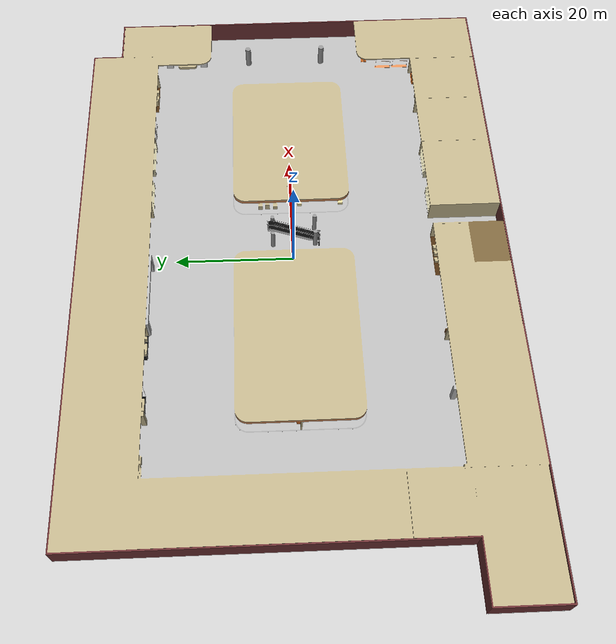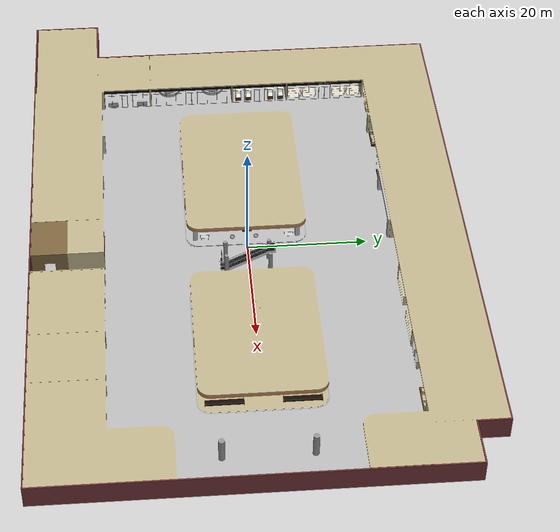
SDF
<?xml version="1.0"?>
<sdf version="1.4">
  <world name="default">
    <include>
      <uri>model://ground_plane</uri>
    </include>
    <include>
      <uri>model://sun</uri>
    </include>
    <model name="my_mesh">
      <pose>-1.2 0 -0.2  0 0 0</pose>
      <static>true</static>
      <link name="body">
        <visual name="visual">
          <geometry>
            <mesh>
              <uri>model://mall/mall_without_glass.dae</uri>
            </mesh>
          </geometry>
        </visual>
        <collision name='collision'>
          <laser_retro>0</laser_retro>
          <geometry>
            <mesh>
              <uri>model://mall/mall_collision.dae</uri>
            </mesh>
          </geometry>
          <max_contacts>10</max_contacts>
          <surface>
            <bounce/>
            <friction>
              <ode/>
            </friction>
            <contact>
              <ode/>
            </contact>
          </surface>
        </collision>
      </link>
    </model>
  </world>
</sdf>
